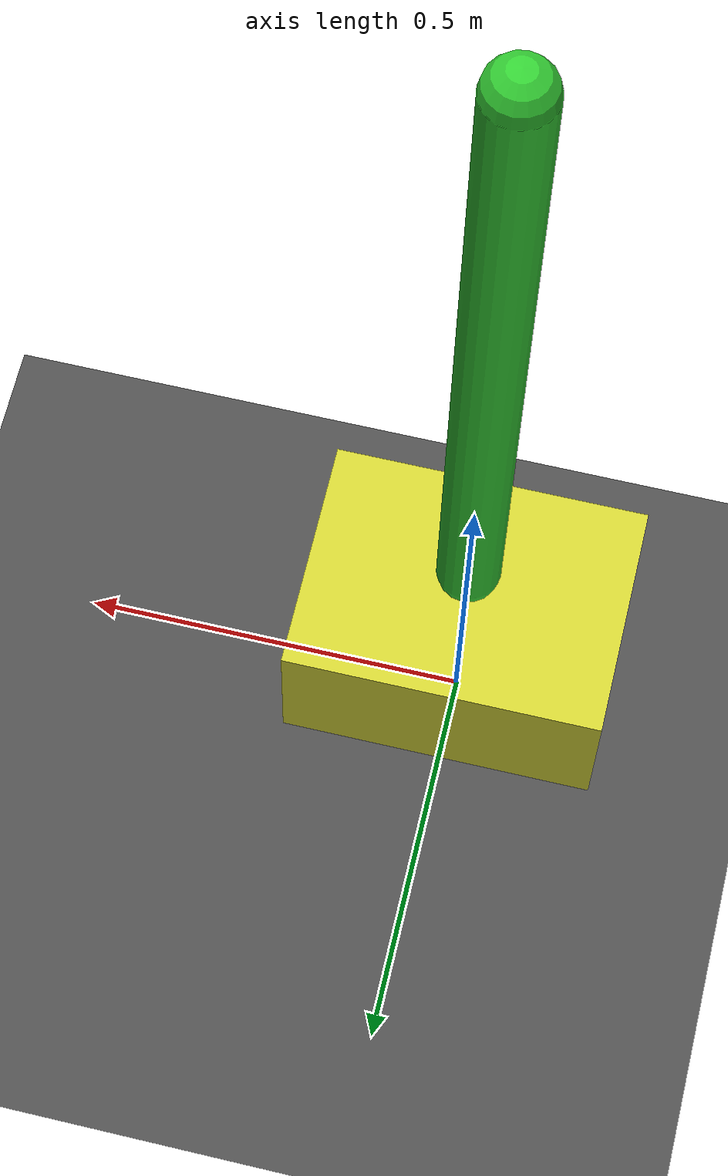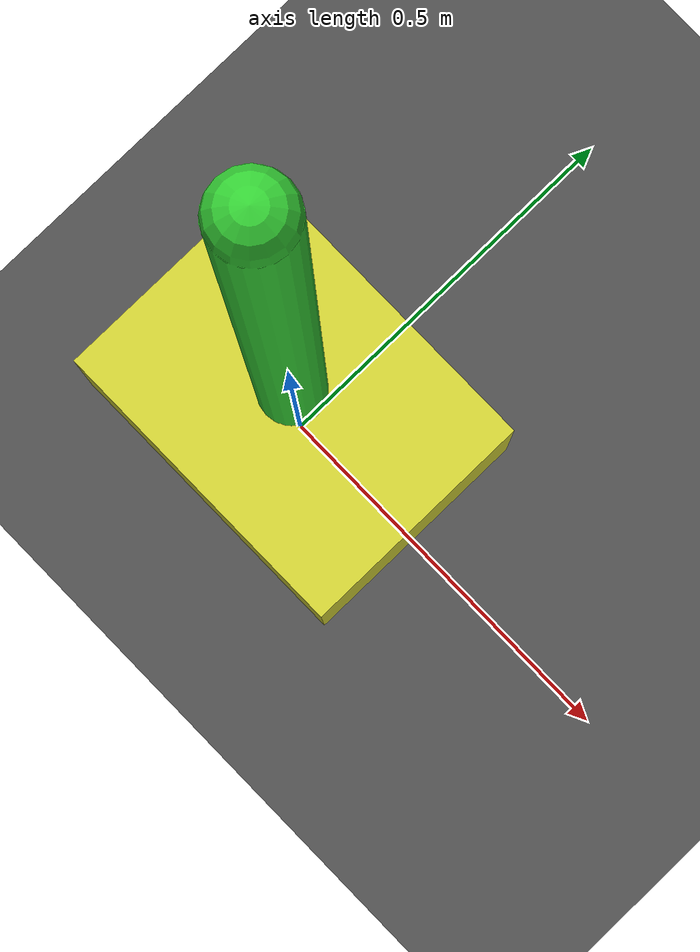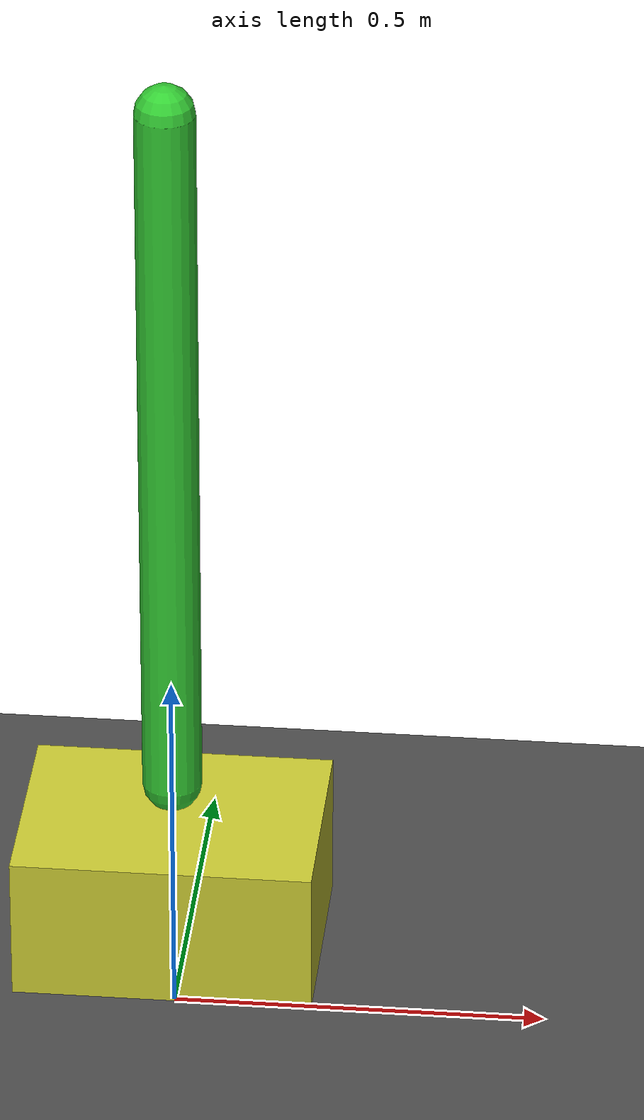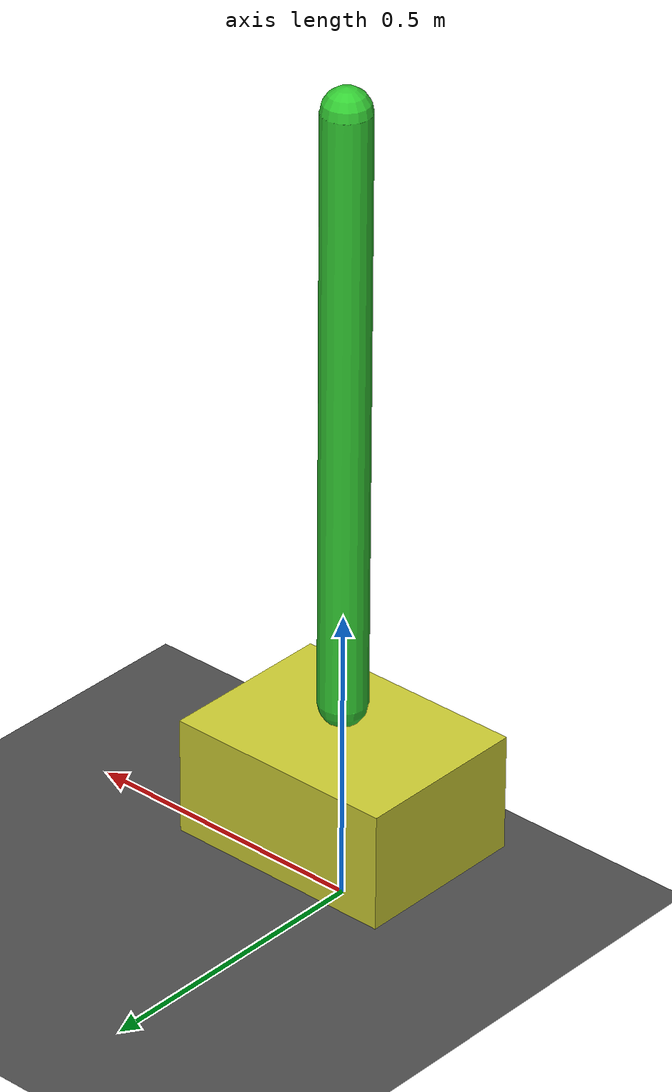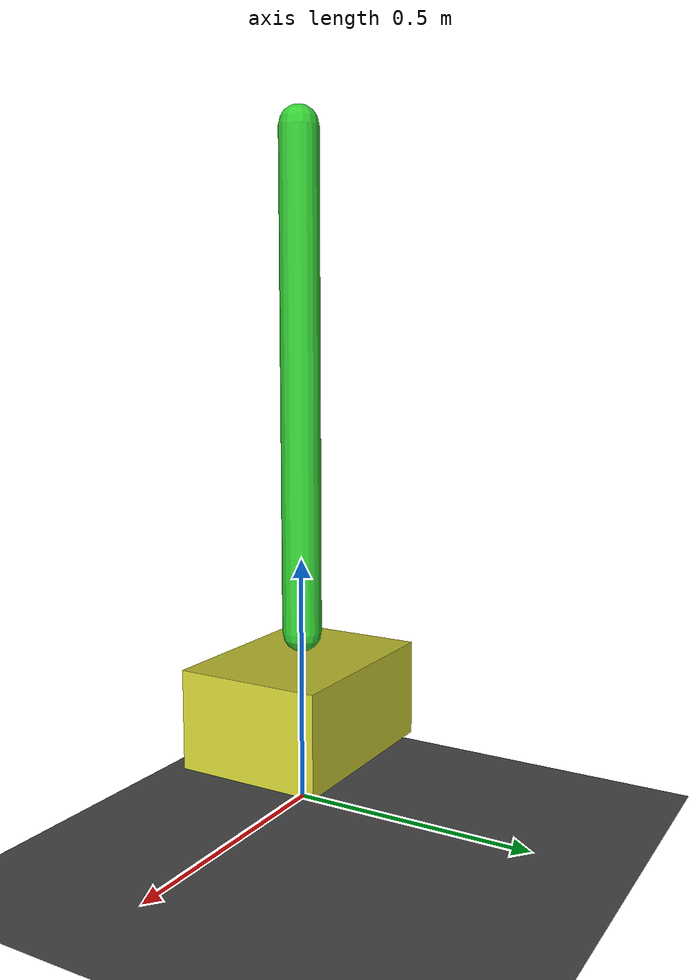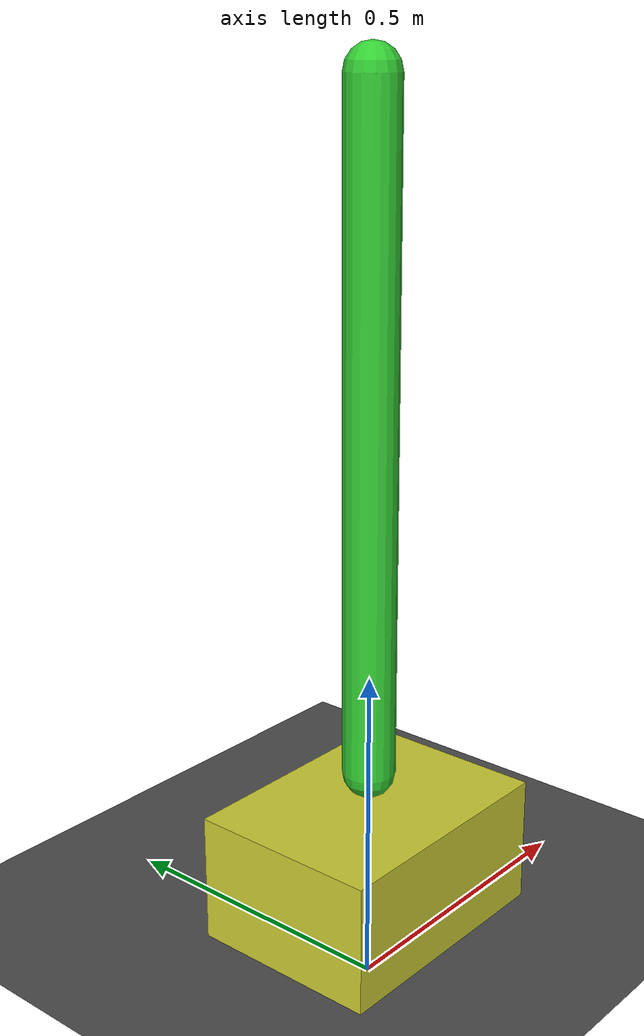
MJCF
<mujoco model="cartpole">
  <option gravity="0 0 -9.81" timestep="0.01"/>
  <worldbody>
    <light pos="0 0 5"/>
    <geom name="floor" type="plane" size="5 5 0.1" rgba="0.3 0.3 0.3 1"/>
    <body name="cart" pos="0 0 0.2">
      <joint name="slider" type="slide" axis="1 0 0" range="-3 3"/>
      <geom type="box" size="0.2 0.15 0.1" rgba="0.8 0.8 0.2 1" mass="1"/>
      <body name="pole" pos="0 0 0.15">
        <joint name="hinge" type="hinge" axis="0 1 0" damping="0.01"/>
        <geom type="capsule" fromto="0 0 0 0 0 1" size="0.04" rgba="0.2 0.8 0.2 1" mass="0.5"/>
      </body>
    </body>
  </worldbody>
  <actuator>
    <motor name="force" joint="slider" ctrlrange="-100 100" ctrllimited="true"/>
  </actuator>
  <sensor>
    <jointpos name="slider_pos" joint="slider"/>
    <jointvel name="slider_vel" joint="slider"/>
    <jointpos name="hinge_pos" joint="hinge"/>
    <jointvel name="hinge_vel" joint="hinge"/>
    <actuatorfrc name="force_applied" actuator="force"/>
    <framepos name="pole_tip_pos" objtype="body" objname="pole"/>
  </sensor>
</mujoco>
